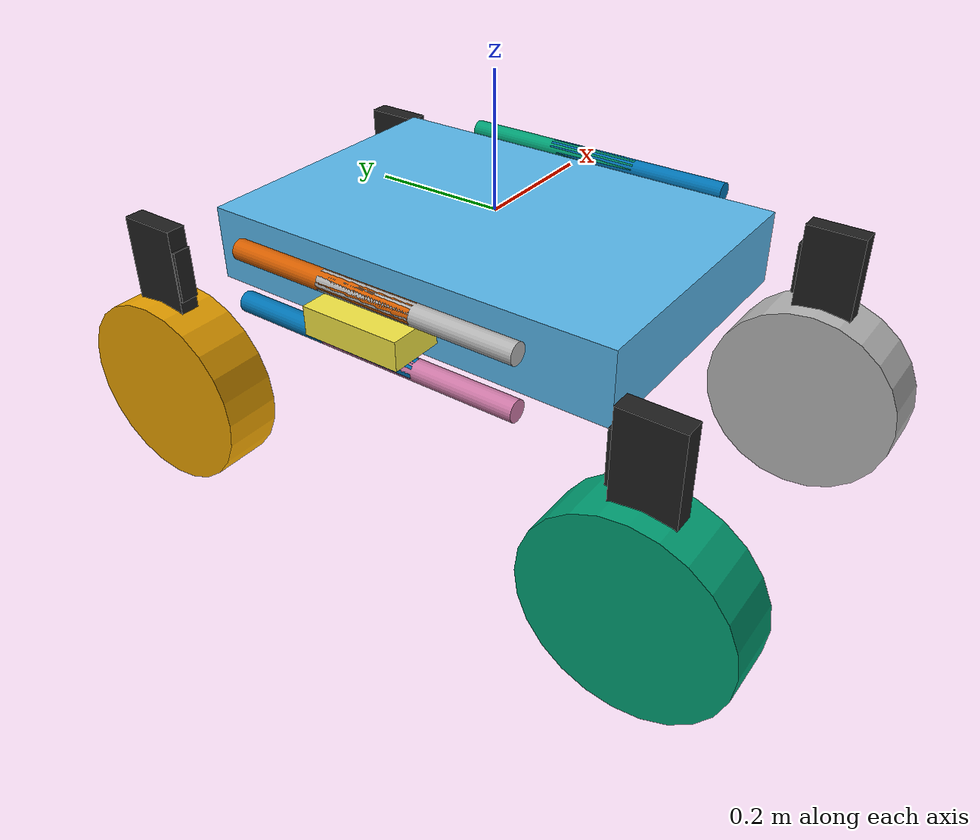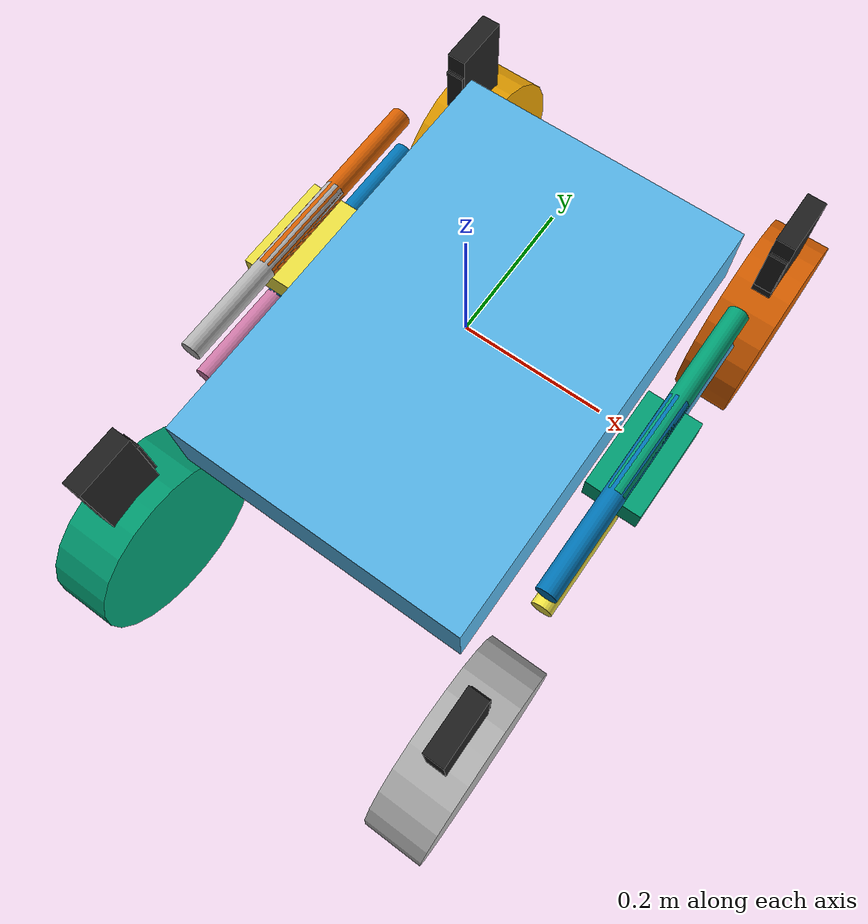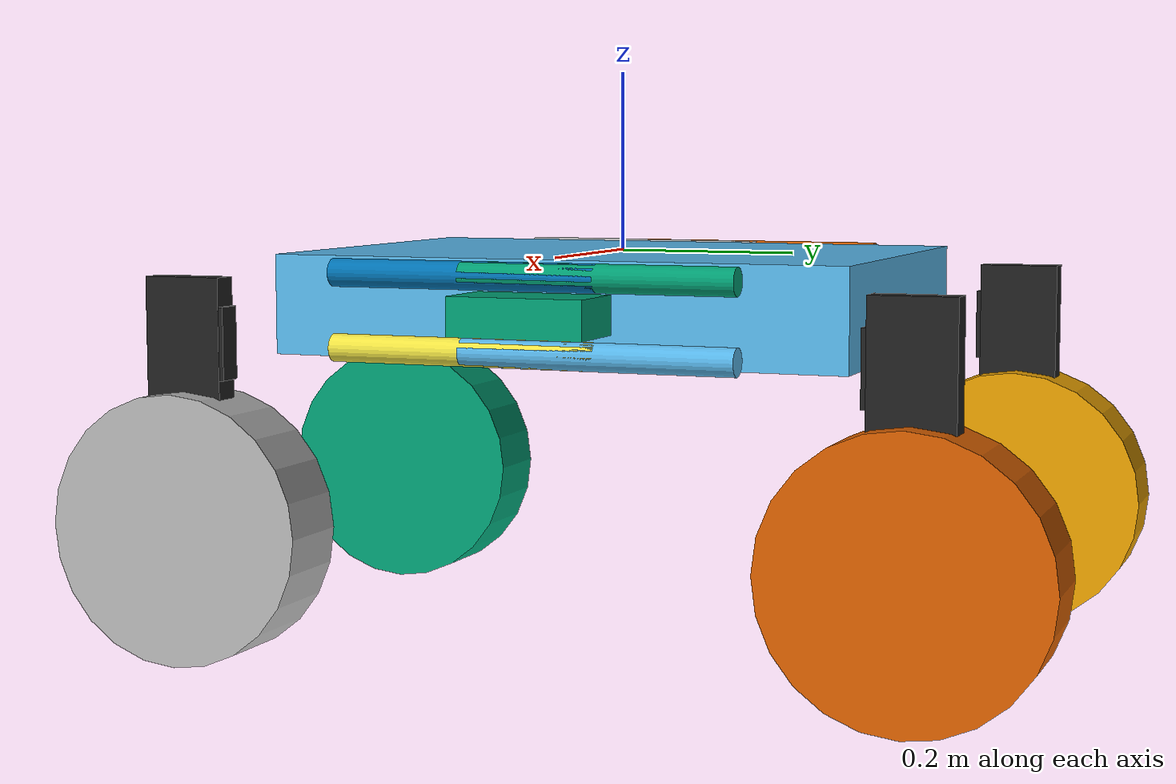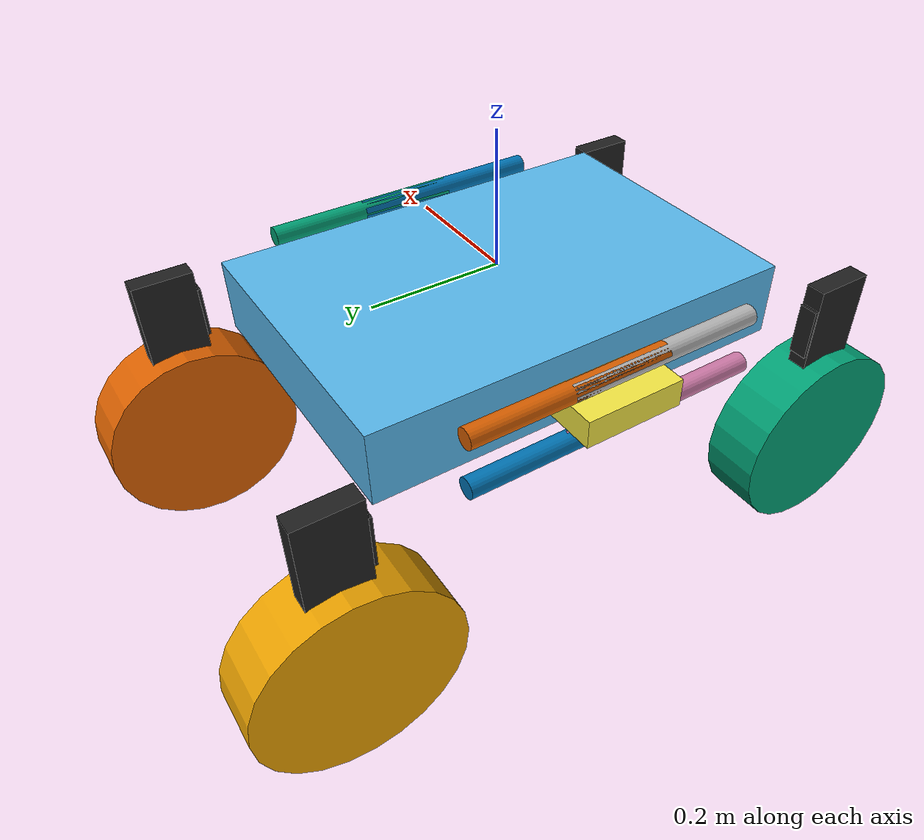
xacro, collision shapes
<robot xmlns:xacro="http://www.ros.org/wiki/xacro" name="robot_name">
    <link name="base_link" />

    <xacro:include filename="$(find rs_description)/urdf_v2/rover_movement/rover_movement.xacro"/>

    <joint name="base_link_to_chassis" type="fixed">
        <parent link="base_link"/>
        <child link="chassis_link"/>
        <origin xyz="0 0 ${-chassis_height/2}" rpy="0 0 0"/>
    </joint>
</robot>

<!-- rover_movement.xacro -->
<robot name="rover_base"
    xmlns:xacro="http://ros.org/wiki/xacro">

    <xacro:include filename="$(find rs_description)/urdf_v2/rover_movement/utils/params.xacro"/>
    <xacro:include filename="$(find rs_description)/urdf_v2/rover_movement/utils/macros.xacro"/>

    <link name="chassis_link">
        <visual>
            <origin rpy="0 0 0" xyz="0 0 0"/>
            <geometry>
                <mesh filename="package://rover_description/urdf/rover_movement/meshes/chassis.dae"/>
            </geometry>
        </visual>
        <collision>
                <geometry>
                    <box size="${chassis_width} ${chassis_length} ${chassis_height}"/>
                </geometry>
                <origin rpy="0 0 0" xyz="0 0 0"/>
            </collision>
            <inertial>
                <mass value="${chassis_mass}"/>
                <origin xyz="0 0 0" rpy="0 0 0"/>
                <xacro:box_inertia mass="${chassis_mass}" width="${chassis_width}" height="${chassis_height}" />
            </inertial>
    </link>

    <xacro:swaypivot name="l" lr="${left}" />
    <xacro:swaypivot name="r" lr="${right}" />

    <joint name="l_swaypivot_joint" type="revolute">
        <parent link="chassis_link"/>
        <child link="l_swaypivot_link"/>
        <origin xyz="${1*(chassis_width/2 + sway_pivot_depth/2 + sway_pivot_gap)} 0.0 0.0" rpy="0 0 0"/>
        <axis xyz="1.0 0.0 0.0"/>
        <limit effort="1000" velocity="1000" lower="${-pi * 0.25}" upper="${pi * 0.25}"/>
    </joint>

    <joint name="r_swaypivot_joint" type="revolute">
        <parent link="chassis_link"/>
        <child link="r_swaypivot_link"/>
        <origin xyz="${-1*(chassis_width/2 + sway_pivot_depth/2 + sway_pivot_gap)} 0.0 0.0" rpy="0 0 0"/>
        <axis xyz="1.0 0.0 0.0"/>
        <limit effort="1000" velocity="1000" lower="${-pi * 0.25}" upper="${pi * 0.25}"/>
        <mimic joint="l_swaypivot_joint" multiplier="-1" offset="0"/>
    </joint>

    <xacro:leg sway="r" name="fr" fb="${front}" lr="${right}" tb="${bottom}"/>
    <xacro:leg sway="l" name="fl" fb="${front}" lr="${left}" tb="${bottom}"/>
    <xacro:leg sway="r" name="br" fb="${back}" lr="${right}" tb="${bottom}"/>
    <xacro:leg sway="l" name="bl" fb="${back}" lr="${left}" tb="${bottom}"/>

    <gazebo>
        <plugin name="gazebo_ros_control" filename="libgazebo_ros_control.so">
            <robotNamespace>/</robotNamespace>
        </plugin>

<!-- Copied and pasted from Gazebo plugin tutorial-->
        <plugin name="skid_steer_drive_controller" filename="libgazebo_ros_skid_steer_drive.so">
            <updateRate>100.0</updateRate>
            <robotNamespace>/</robotNamespace>
            <leftFrontJoint>fl_wheel_joint</leftFrontJoint>
            <rightFrontJoint>fr_wheel_joint</rightFrontJoint>
            <leftRearJoint>bl_wheel_joint</leftRearJoint>
            <rightRearJoint>br_wheel_joint</rightRearJoint>
            <wheelSeparation>0.4</wheelSeparation>
            <wheelDiameter>0.215</wheelDiameter>
            <robotBaseFrame>chassis_link</robotBaseFrame>
            <torque>20</torque>
            <topicName>cmd_vel</topicName>
            <broadcastTF>false</broadcastTF>
        </plugin>
    </gazebo>

</robot>

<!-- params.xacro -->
<robot xmlns:xacro="http://www.ros.org/wiki/xacro">

    <xacro:property name="chassis_width" value="0.442"/>
    <xacro:property name="chassis_length" value="0.650"/>
    <xacro:property name="chassis_height" value="0.11"/>
    <xacro:property name="chassis_mass" value="15"/>

    <xacro:property name="sway_pivot_depth" value="0.042"/>
    <xacro:property name="sway_pivot_gap" value="0.030"/>
    <xacro:property name="sway_pivot_vert_sep" value="0.080"/>
    <xacro:property name="sway_pivot_hor_sep" value="0.150"/>

    <xacro:property name="leg_radius" value="0.015"/>
    <xacro:property name="leg_length" value="0.300"/>
    <xacro:property name="leg_rotation" value="0.400"/>
    <xacro:property name="leg_mass" value="0.400"/>

    <xacro:property name="steer_hub_width" value="0.028"/>
    <xacro:property name="steer_hub_height" value="0.080"/>
    <xacro:property name="steer_hub_depth" value="0.042"/>

    <xacro:property name="steer_link_width" value="0.030"/>
    <xacro:property name="steer_link_height" value="0.1835"/>
    <xacro:property name="steer_link_depth" value="0.090"/>

    <xacro:property name="lower_leg_radius" value="0.03"/>
    <xacro:property name="lower_leg_length" value="0.1"/>
    <xacro:property name="lower_leg_rotation" value="0.4"/>
    <xacro:property name="lower_leg_mass" value="0.4"/>

    <xacro:property name="wheel_radius" value="0.15"/>
    <xacro:property name="wheel_depth" value="0.090"/>
    <xacro:property name="wheel_axial_offset" value="${-wheel_depth/2}"/>
    <xacro:property name="wheel_mass" value="1"/>

    <!-- (-1) for wheel in, (1) for wheel out -->
    <xacro:property name="wheel_config" value="-1"/>

    <xacro:property name="front" value="1"/>
    <xacro:property name="back" value="-1"/>
    <xacro:property name="right" value="1"/>
    <xacro:property name="left" value="-1"/>
    <xacro:property name="top" value="1"/>
    <xacro:property name="bottom" value="-1"/>

    <xacro:property name="ixx" value="0.5"/>
    <xacro:property name="ixy" value="0.5"/>
    <xacro:property name="ixz" value="0.5"/>
    <xacro:property name="iyy" value="0.5"/>
    <xacro:property name="iyz" value="0.5"/>
    <xacro:property name="izz" value="0.5"/>

    <xacro:macro name="box_inertia" params="mass width height">
      <inertia
        ixx="${mass / 12.0 * (width*width + height*height)}"
        ixy="0.0"
        ixz="0.0"
        iyy="${mass / 12.0 * (height*height + width*width)}"
        iyz="0.0"
        izz="${mass / 12.0 * (width*width + width*width)}"/>
    </xacro:macro>

    <xacro:macro name="cylinder_inertia" params="mass length">
      <inertia
        ixx="${(mass * length * length )/12}"
        ixy="0.0"
        ixz="0.0"
        iyy="0.0"
        iyz="0.0"
        izz="${(mass * length * length )/12}"/>
    </xacro:macro>

</robot>

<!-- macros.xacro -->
<robot xmlns:xacro="http://www.ros.org/wiki/xacro">

    <xacro:macro name="swaypivot" params="name lr">

        <link name="${name}_swaypivot_link">
            <visual>
                <geometry>
                    <mesh filename="package://rover_description/urdf/rover_movement/meshes/sway_pivot.dae"/>
                </geometry>
                <origin xyz="0 0 0" rpy="0 0 ${lr*pi/2}"/>
            </visual>
            <collision>
                <geometry>
                    <box size="${sway_pivot_hor_sep} ${sway_pivot_vert_sep} ${sway_pivot_depth}"/>
                </geometry>
                <origin xyz="0 0 0" rpy="0 0 ${lr*pi/2}"/>
            </collision>
            <inertial>
                <mass value="${leg_mass}"/>
                <origin xyz="0 0 0" rpy="0 0 ${lr*pi/2}"/>
                <xacro:box_inertia mass="${chassis_mass}" width="${sway_pivot_hor_sep}" height="${sway_pivot_depth}" />
            </inertial>
        </link>

    </xacro:macro>

    <xacro:macro name="leg" params="sway name fb lr tb">
        <link name="${name}_leg_link">
            <visual>
                <geometry>
                    <mesh filename="package://rover_description/urdf/rover_movement/meshes/bottom_link.dae"/>
                </geometry>
                <origin xyz="0 0 0" rpy="0 0 ${fb*pi/2}"/>
            </visual>
            <collision>
                <geometry>
                    <cylinder radius="${leg_radius}" length="${leg_length}"/>
                </geometry>
                <origin xyz="0 0 0" rpy="0 0 ${fb*pi/2}"/>
            </collision>
            <inertial>
                <mass value="${leg_mass}"/>
                <origin xyz="0 0 0" rpy="0 0 ${fb*pi/2}"/>
                <xacro:cylinder_inertia mass="${leg_mass}" length="${leg_length}" />
            </inertial>
        </link>

        <joint name="${sway}_swaypivot_${name}_upper_leg_joint" type="revolute">
            <parent link="${sway}_swaypivot_link"/>
            <child link="${name}_leg_link"/>
            <origin xyz="0 ${fb*sway_pivot_hor_sep/2} ${tb*sway_pivot_vert_sep/2}" rpy="${-fb*pi*0.5} 0 0"/>
            <axis xyz="${-fb*1.0} 0 0"/>
            <!-- TODO: set variables to these limits -->
            <limit effort="1000" velocity="1000" lower="-0.2" upper="0.65"/>
            <dynamics damping="50" friction="1"/>
        </joint>

        <link name="${name}_upper_leg_mimic_link">
            <visual>
                <geometry>
                    <mesh filename="package://rover_description/urdf/rover_movement/meshes/top_link.dae"/>
                </geometry>
                <origin xyz="0 0 0" rpy="0 0 ${fb*pi/2}"/>
            </visual>
            <collision>
                <geometry>
                    <cylinder radius="${leg_radius}" length="${leg_length}"/>
                </geometry>
                <origin xyz="0 0 0" rpy="0 0 ${fb*pi/2}"/>
            </collision>
            <inertial>
                <origin xyz="0 0 0" rpy="0 0 ${fb*pi/2}"/>
                <mass value="${leg_mass}"/>
               <xacro:cylinder_inertia mass="${leg_mass}" length="${leg_length}" />
            </inertial>
        </link>

        <joint name="${sway}_swaypivot_${name}_upper_leg_mimic_joint" type="revolute">
            <parent link="${sway}_swaypivot_link"/>
            <child link="${name}_upper_leg_mimic_link"/>
            <origin xyz="0 ${fb*sway_pivot_hor_sep/2} ${-tb*sway_pivot_vert_sep/2}" rpy="${-fb*pi*0.5} 0 0"/>
            <axis xyz="${-fb*1.0} 0 0"/>
            <!-- dont change these limits -->
            <limit effort="1000" velocity="1000" lower="-10" upper="10"/>
            <mimic joint="${sway}_swaypivot_${name}_upper_leg_joint" multiplier="1" offset="0"/>
        </joint>

        <link name="${name}_steer_hub_link">
            <visual>
                <geometry>
                    <mesh filename="package://rover_description/urdf/rover_movement/meshes/parallel_link.dae"/>
                </geometry>
                <origin xyz="0 0 0" rpy="0 0 ${fb*pi/2}"/>
                <material name="black"/>
            </visual>
            <collision>
                <geometry>
                    <box size="${steer_hub_depth} ${steer_hub_width} ${steer_hub_height}"/>
                </geometry>
                <origin xyz="0 0 0" rpy="0 0 ${fb*pi/2}"/>
                <material name="black"/>
            </collision>
            <inertial>
                <mass value="${leg_mass}"/>
                <inertia ixx="0.4" ixy="0.0" ixz="0.0" iyy="0.4" iyz="0.0" izz="0.2"/>
            </inertial>
        </link>

        <joint name="${name}_leg_to_${name}_steer_hub_joint" type="revolute">
            <parent link="${name}_leg_link"/>
            <child link="${name}_steer_hub_link"/>
            <origin xyz="0 0 ${leg_length}" rpy="${-fb*pi * 0.5} 0 0"/>
            <axis xyz="${-fb*1.0} 0 0"/>
            <!-- dont change these limits -->
            <limit effort="1000" velocity="1000" lower="-10" upper="10"/>
            <mimic joint="${sway}_swaypivot_${name}_upper_leg_joint" multiplier="-1" offset="0"/>
            <dynamics damping="50" friction="1"/>
        </joint>

        <link name="${name}_steer_link">
            <visual>
                <geometry>
                    <mesh filename="package://rover_description/urdf/rover_movement/meshes/steer_hub.dae"/>
                </geometry>
                <origin xyz="0 0 0" rpy="0 ${pi} ${wheel_config*lr*pi/2}"/>
                <material name="black"/>
            </visual>
            <collision>
                <geometry>
                    <box size="${steer_link_depth} ${steer_link_width} ${steer_link_height}"/>
                </geometry>
                <origin xyz="0 0 0" rpy="0 0 ${fb*pi/2}"/>
                <material name="black"/>
            </collision>
            <inertial>
                <mass value="${leg_mass}"/>
                <origin xyz="0 0 0" rpy="0 0 ${fb*pi/2}"/>
                <xacro:box_inertia mass="${chassis_mass}" width="${steer_link_depth}" height="${steer_link_height}" />
            </inertial>
        </link>

        <joint name="${name}_leg_to_${name}_steer_joint" type="revolute">
            <parent link="${name}_steer_hub_link"/>
            <child link="${name}_steer_link"/>
            <origin xyz="0 ${-fb*0.029} 0.02" rpy="0 0 0"/>
            <axis xyz="0 0 ${fb*lr*1.0}"/>
            <!-- dont change these limits -->
            <limit effort="1000" velocity="1000" lower="${-2*pi}" upper="${2*pi}"/>
            <dynamics damping="50" friction="1"/>
        </joint>

        <link name="${name}_wheel_link">
            <visual>
                <geometry>
                    <mesh filename="package://rover_description/urdf/rover_movement/meshes/wheel.dae"/>
                </geometry>
                <origin xyz="0 0 0" rpy="0 0 ${wheel_config*lr*pi/2}"/>
            </visual>
            <collision>
                <geometry>
                    <cylinder length="${wheel_depth}" radius="${wheel_radius}"/>
                </geometry>
                <origin xyz="${lr*wheel_axial_offset} 0 0" rpy="0 ${wheel_config*lr*pi/2} 0"/>
            </collision>
            <inertial>
                <mass value="${leg_mass}"/>
                <xacro:cylinder_inertia mass="${wheel_mass}" length="${wheel_depth}" />
            </inertial>
        </link>

        <joint name="${name}_wheel_joint" type="continuous">
            <origin xyz="${wheel_config*lr*wheel_axial_offset} 0 ${steer_link_height}" rpy="0 0 0"/>
            <parent link="${name}_steer_link"/>
            <child link="${name}_wheel_link"/>
            <dynamics damping="50" friction="1"/>
        </joint>

        <transmission name="${name}_wheel_trans" type="SimpleTransmission">
            <type>transmission_interface/SimpleTransmission</type>
            <actuator name="${name}_wheel_motor">
                <mechanicalReduction>1</mechanicalReduction>
            </actuator>
            <joint name="${name}_wheel_joint">
                <hardwareInterface>VelocityJointInterface</hardwareInterface>
            </joint>
        </transmission>

        <transmission name="${name}_steering_trans" type="SimpleTransmission">
            <type>transmission_interface/SimpleTransmission</type>
            <actuator name="${name}_steering_motor">
                <hardwareInterface>PositionJointInterface</hardwareInterface>
                <mechanicalReduction>1</mechanicalReduction>
            </actuator>
            <joint name="${name}_leg_to_${name}_steer_joint">
                <hardwareInterface>PositionJointInterface</hardwareInterface>
            </joint>
        </transmission>

    </xacro:macro>

</robot>
